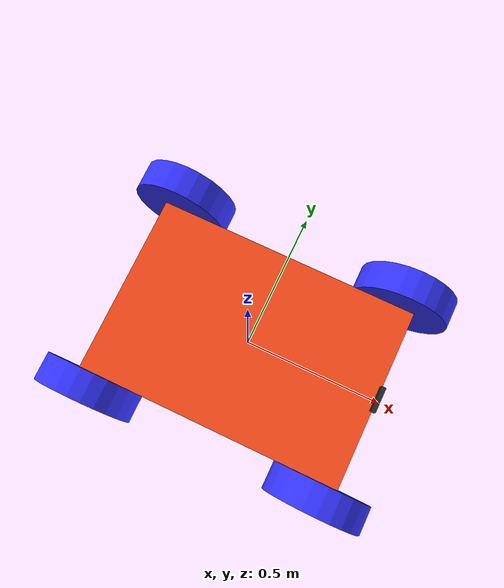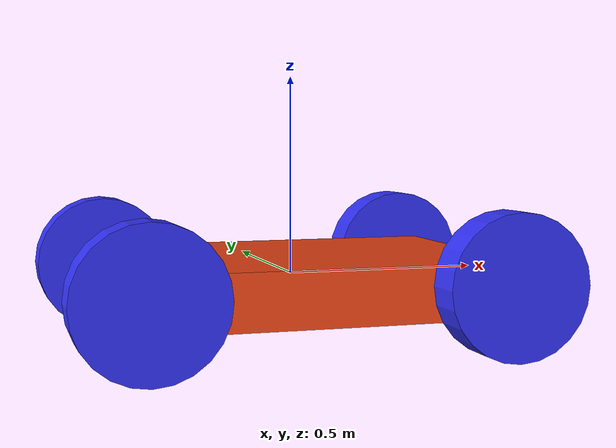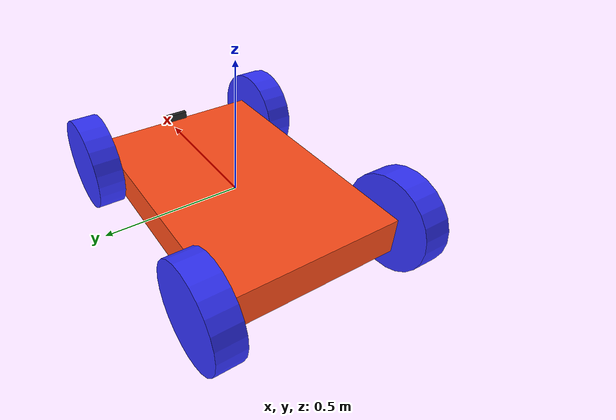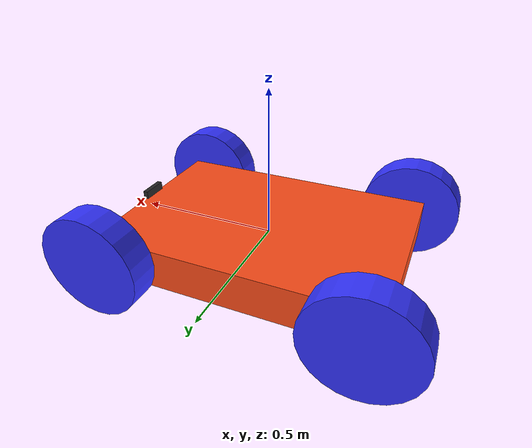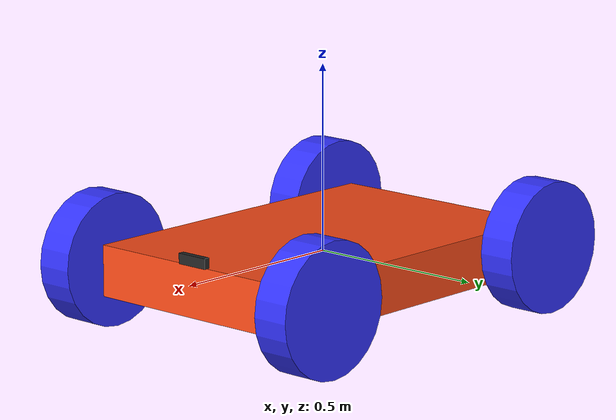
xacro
<?xml version="1.0"?>
<robot xmlns:xacro="http://www.ros.org/wiki/xacro" name="lunabot">

    <!-- Include robot chassis and wheels -->
    <xacro:include filename="robot_core.xacro"/>

    <!-- Include OAK-D S2 camera (mounts to chassis) -->
    <xacro:include filename="oak_d_s2.xacro"/>

</robot>

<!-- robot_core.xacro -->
<robot xmlns:xacro="http://www.ros.org/wiki/xacro">

    <xacro:include filename="inertial_macros.xacro"/>

    <!-- Chassis properties -->
    <xacro:property name="chassis_length" value="0.9652"/>      <!-- 38 in -->
    <xacro:property name="chassis_width" value="0.6604"/>       <!-- 26 in -->
    <xacro:property name="chassis_height" value="0.138"/>
    <xacro:property name="chassis_mass" value="14.608"/>

    <!-- Wheel properties -->
    <xacro:property name="wheel_radius" value="0.1778"/>        <!-- 7 in -->
    <xacro:property name="wheel_thickness" value="0.1016"/>     <!-- 4 in -->
    <xacro:property name="wheel_mass" value="1.977"/>

    <!-- Wheel offsets -->
    <xacro:property name="wheel_offset_x" value="0.4826"/>      <!-- half of chassis_length -->
    <xacro:property name="wheel_offset_y" value="0.3810"/>
    <xacro:property name="wheel_offset_z" value="0.0889"/>      <!-- ~3.5 in off ground -->

    <!-- Materials -->
    <material name="white">
        <color rgba="1 1 1 1" />
    </material>

    <material name="orange">
        <color rgba="1 0.3 0.1 1"/>
    </material>

    <material name="blue">
        <color rgba="0.2 0.2 1 1"/>
    </material>

    <material name="black">
        <color rgba="0 0 0 1"/>
    </material>

    <material name="red">
        <color rgba="1 0 0 1"/>
    </material>

    <!-- BASE LINK -->
    <link name="base_link">
    </link>

    <!-- BASE_FOOTPRINT LINK -->
    <joint name="base_footprint_joint" type="fixed">
        <parent link="base_link"/>
        <child link="base_footprint"/>
        <origin xyz="0 0 0" rpy="0 0 0"/>
    </joint>

    <link name="base_footprint">
    </link>

    <!-- CHASSIS LINK -->
    <joint name="chassis_joint" type="fixed">
        <parent link="base_link"/>
        <child link="chassis"/>
        <origin xyz="${-wheel_offset_x} 0 ${-wheel_offset_z}"/>
    </joint>

    <link name="chassis">
        <visual>
            <origin xyz="${chassis_length/2} 0 ${chassis_height/2}"/>
            <geometry>
                <box size="${chassis_length} ${chassis_width} ${chassis_height}"/>
            </geometry>
            <material name="orange"/>
        </visual>
        <collision>
            <origin xyz="${chassis_length/2} 0 ${chassis_height/2}"/>
            <geometry>
                <box size="${chassis_length} ${chassis_width} ${chassis_height}"/>
            </geometry>
        </collision>
        <xacro:inertial_box mass="${chassis_mass}" x="${chassis_length}" y="${chassis_width}" z="${chassis_height}">
            <origin xyz="${chassis_length/2} 0 ${chassis_height/2}" rpy="0 0 0"/>
        </xacro:inertial_box>
    </link>

    <!-- LEFT FRONT WHEEL LINK  -->
    <joint name="left_front_wheel_joint" type="continuous">
        <parent link="base_link"/>
        <child link="left_front_wheel"/>
        <origin xyz="${wheel_offset_x - 0.05} ${wheel_offset_y} 0" rpy="-${pi/2} 0 0" />
        <axis xyz="0 0 1"/>
        <dynamics damping="0.7" friction="0.3"/>
    </joint>

    <link name="left_front_wheel">
        <visual>
            <geometry>
                <cylinder radius="${wheel_radius}" length="${wheel_thickness}"/>
            </geometry>
            <material name="blue"/>
        </visual>
        <collision>
            <geometry>
                <cylinder radius="${wheel_radius}" length="${wheel_thickness}"/>
            </geometry>
        </collision>
        <xacro:inertial_cylinder mass="${wheel_mass}" length="${wheel_thickness}" radius="${wheel_radius}">
            <origin xyz="0 0 0" rpy="0 0 0"/>
        </xacro:inertial_cylinder>
    </link>

    <!-- RIGHT FRONT WHEEL LINK  -->
    <joint name="right_front_wheel_joint" type="continuous">
        <parent link="base_link"/>
        <child link="right_front_wheel"/>
        <origin xyz="${wheel_offset_x - 0.05} ${-wheel_offset_y} 0" rpy="${pi/2} 0 0" />
        <axis xyz="0 0 -1"/>
        <dynamics damping="0.7" friction="0.3"/>
    </joint>

    <link name="right_front_wheel">
        <visual>
            <geometry>
                <cylinder radius="${wheel_radius}" length="${wheel_thickness}"/>
            </geometry>
            <material name="blue"/>
        </visual>
        <collision>
            <geometry>
                <cylinder radius="${wheel_radius}" length="${wheel_thickness}"/>
            </geometry>
        </collision>
        <xacro:inertial_cylinder mass="${wheel_mass}" length="${wheel_thickness}" radius="${wheel_radius}">
            <origin xyz="0 0 0" rpy="0 0 0"/>
        </xacro:inertial_cylinder>
    </link>

    <!-- LEFT REAR WHEEL LINK -->
    <joint name="left_wheel_joint" type="continuous">
        <parent link="base_link"/>
        <child link="left_wheel"/>
        <origin xyz="${-wheel_offset_x + 0.05} ${wheel_offset_y} 0" rpy="-${pi/2} 0 0" />
        <axis xyz="0 0 1"/>
        <dynamics damping="0.7" friction="0.3"/>
    </joint>

    <link name="left_wheel">
        <visual>
            <geometry>
                <cylinder radius="${wheel_radius}" length="${wheel_thickness}"/>
            </geometry>
            <material name="blue"/>
        </visual>
        <collision>
            <geometry>
                <cylinder radius="${wheel_radius}" length="${wheel_thickness}"/>
            </geometry>
        </collision>
        <xacro:inertial_cylinder mass="${wheel_mass}" length="${wheel_thickness}" radius="${wheel_radius}">
            <origin xyz="0 0 0" rpy="0 0 0"/>
        </xacro:inertial_cylinder>
    </link>

    <!-- RIGHT REAR WHEEL LINK  -->
    <joint name="right_wheel_joint" type="continuous">
        <parent link="base_link"/>
        <child link="right_wheel"/>
        <origin xyz="${-wheel_offset_x + 0.05} ${-wheel_offset_y} 0" rpy="${pi/2} 0 0" />
        <axis xyz="0 0 -1"/>
        <dynamics damping="0.7" friction="0.3"/>
    </joint>

    <link name="right_wheel">
        <visual>
            <geometry>
                <cylinder radius="${wheel_radius}" length="${wheel_thickness}"/>
            </geometry>
            <material name="blue"/>
        </visual>
        <collision>
            <geometry>
                <cylinder radius="${wheel_radius}" length="${wheel_thickness}"/>
            </geometry>
        </collision>
        <xacro:inertial_cylinder mass="${wheel_mass}" length="${wheel_thickness}" radius="${wheel_radius}">
            <origin xyz="0 0 0" rpy="0 0 0"/>
        </xacro:inertial_cylinder>
    </link>

</robot>

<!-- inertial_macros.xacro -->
<robot xmlns:xacro="http://www.ros.org/wiki/xacro">

    <!-- Standard inertial calculations https://en.wikipedia.org/wiki/List_of_moments_of_inertia -->

    <xacro:macro name="inertial_box" params="mass x y z *origin">
        <inertial>
            <xacro:insert_block name="origin"/>
            <mass value="${mass}" />
            <inertia ixx="${(1/12) * mass * (y*y+z*z)}" ixy="0.0" ixz="0.0"
                    iyy="${(1/12) * mass * (x*x+z*z)}" iyz="0.0"
                    izz="${(1/12) * mass * (x*x+y*y)}" />
        </inertial>
    </xacro:macro>

    <xacro:macro name="inertial_cylinder" params="mass length radius *origin">
        <inertial>
            <xacro:insert_block name="origin"/>
            <mass value="${mass}" />
            <inertia ixx="${(1/12) * mass * (3*radius*radius + length*length)}" ixy="0.0" ixz="0.0"
                    iyy="${(1/12) * mass * (3*radius*radius + length*length)}" iyz="0.0"
                    izz="${(1/2) * mass * (radius*radius)}" />
        </inertial>
    </xacro:macro>

</robot>

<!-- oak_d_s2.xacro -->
<robot xmlns:xacro="http://www.ros.org/wiki/xacro">

    <!-- OAK-D S2 Camera mounted at front of chassis -->
    <!-- Physical dimensions: ~91mm W x 28mm H x 17mm D -->

    <xacro:property name="oak_d_width" value="0.091"/>
    <xacro:property name="oak_d_height" value="0.028"/>
    <xacro:property name="oak_d_depth" value="0.017"/>
    <xacro:property name="oak_d_mass" value="0.061"/>

    <material name="dark_grey">
        <color rgba="0.15 0.15 0.15 1"/>
    </material>

    <!-- Mount the camera at the front of the chassis, on top -->
    <joint name="oak_d_camera_joint" type="fixed">
        <parent link="chassis"/>
        <child link="oak_link"/>
        <!-- Front of chassis (x=chassis_length), centered (y=0), on top (z=chassis_height + half camera height) -->
        <origin xyz="${chassis_length} 0 ${chassis_height + oak_d_height/2}" rpy="0 0 0"/>
    </joint>

    <link name="oak_link">
        <visual>
            <geometry>
                <box size="${oak_d_depth} ${oak_d_width} ${oak_d_height}"/>
            </geometry>
            <material name="dark_grey"/>
        </visual>
        <collision>
            <geometry>
                <box size="${oak_d_depth} ${oak_d_width} ${oak_d_height}"/>
            </geometry>
        </collision>
        <inertial>
            <mass value="${oak_d_mass}"/>
            <inertia ixx="${oak_d_mass*(oak_d_width*oak_d_width + oak_d_height*oak_d_height)/12}"
                     ixy="0" ixz="0"
                     iyy="${oak_d_mass*(oak_d_depth*oak_d_depth + oak_d_height*oak_d_height)/12}"
                     iyz="0"
                     izz="${oak_d_mass*(oak_d_depth*oak_d_depth + oak_d_width*oak_d_width)/12}"/>
        </inertial>
    </link>

    <!-- RGB camera optical frame (X=right, Y=down, Z=forward) -->
    <joint name="oak_d_rgb_optical_joint" type="fixed">
        <parent link="oak_link"/>
        <child link="oak_d_rgb_camera_optical_frame"/>
        <origin xyz="0 0 0" rpy="${-pi/2} 0 ${-pi/2}"/>
    </joint>

    <link name="oak_d_rgb_camera_optical_frame"/>

    <!-- Stereo/depth optical frame (same as RGB for the S2) -->
    <joint name="oak_d_stereo_optical_joint" type="fixed">
        <parent link="oak_link"/>
        <child link="oak_stereo_camera_optical_frame"/>
        <origin xyz="0 0 0" rpy="${-pi/2} 0 ${-pi/2}"/>
    </joint>

    <link name="oak_stereo_camera_optical_frame"/>

    <!-- IMU frame (colocated with oak_link) -->
    <joint name="oak_d_imu_joint" type="fixed">
        <parent link="oak_link"/>
        <child link="oak_imu_frame"/>
        <origin xyz="0 0 0" rpy="0 0 0"/>
    </joint>

    <link name="oak_imu_frame"/>

</robot>
